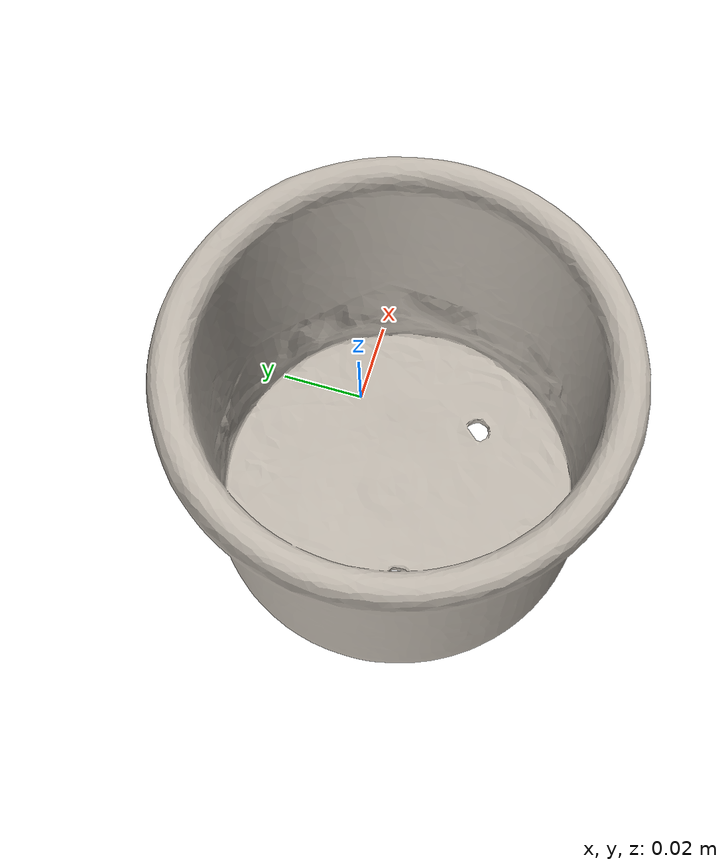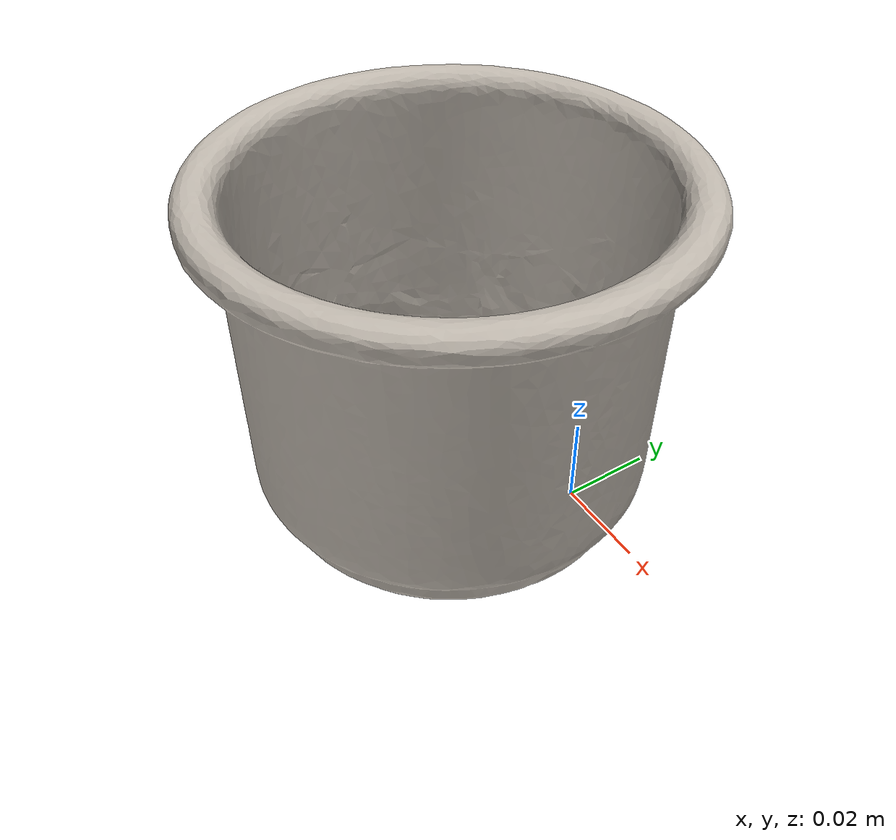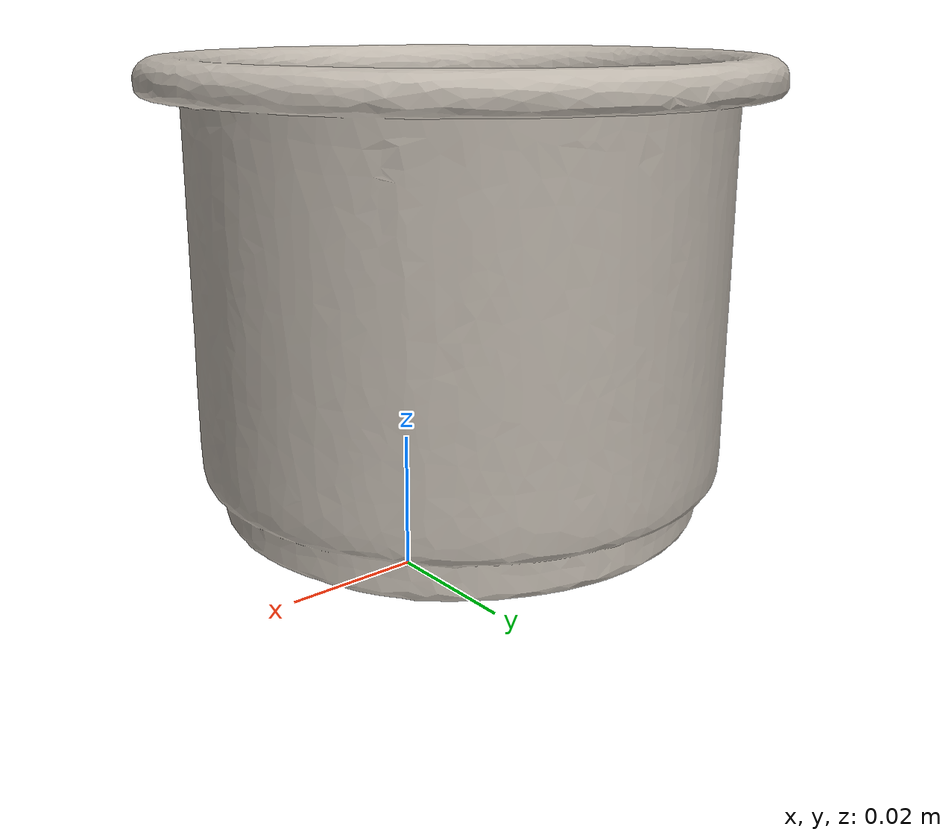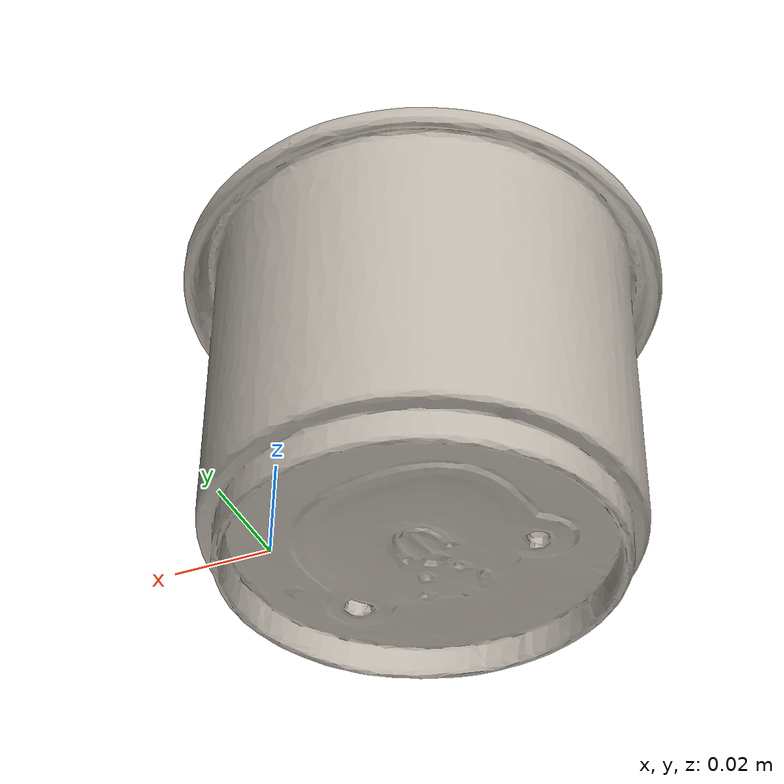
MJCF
<mujoco model="cups_j">
  <compiler angle="radian" meshdir="assets" texturedir="assets"/>
    <default>
        <default class="ycb_col">
            <geom contype="1" conaffinity="1" group="3" rgba=".4 .5 .6 1"/>
        </default>
        <default class="ycb_viz">
            <geom contype="0" conaffinity="0" type="mesh" mass="0"/>
        </default>
    </default>
  <asset>
    <texture type="2d" name="j_cups_tex" file="texture_map.png"/>
    <material name="j_cups_mat" texture="j_cups_tex" specular="0.5" shininess="0.5"/>
    <mesh file="textured.obj" name="j_cups"/>
    <mesh file="textured_collision_0.obj" name="j_cups_collision_0"/>
    <mesh file="textured_collision_1.obj" name="j_cups_collision_1"/>
    <mesh file="textured_collision_2.obj" name="j_cups_collision_2"/>
    <mesh file="textured_collision_3.obj" name="j_cups_collision_3"/>
    <mesh file="textured_collision_4.obj" name="j_cups_collision_4"/>
    <mesh file="textured_collision_5.obj" name="j_cups_collision_5"/>
    <mesh file="textured_collision_6.obj" name="j_cups_collision_6"/>
    <mesh file="textured_collision_7.obj" name="j_cups_collision_7"/>
    <mesh file="textured_collision_8.obj" name="j_cups_collision_8"/>
    <mesh file="textured_collision_9.obj" name="j_cups_collision_9"/>
    <mesh file="textured_collision_10.obj" name="j_cups_collision_10"/>
    <mesh file="textured_collision_11.obj" name="j_cups_collision_11"/>
    <mesh file="textured_collision_12.obj" name="j_cups_collision_12"/>
    <mesh file="textured_collision_13.obj" name="j_cups_collision_13"/>
    <mesh file="textured_collision_14.obj" name="j_cups_collision_14"/>
    <mesh file="textured_collision_15.obj" name="j_cups_collision_15"/>
    <mesh file="textured_collision_16.obj" name="j_cups_collision_16"/>
    <mesh file="textured_collision_17.obj" name="j_cups_collision_17"/>
    <mesh file="textured_collision_18.obj" name="j_cups_collision_18"/>
    <mesh file="textured_collision_19.obj" name="j_cups_collision_19"/>
    <mesh file="textured_collision_20.obj" name="j_cups_collision_20"/>
    <mesh file="textured_collision_21.obj" name="j_cups_collision_21"/>
    <mesh file="textured_collision_22.obj" name="j_cups_collision_22"/>
    <mesh file="textured_collision_23.obj" name="j_cups_collision_23"/>
    <mesh file="textured_collision_24.obj" name="j_cups_collision_24"/>
    <mesh file="textured_collision_25.obj" name="j_cups_collision_25"/>
    <mesh file="textured_collision_26.obj" name="j_cups_collision_26"/>
    <mesh file="textured_collision_27.obj" name="j_cups_collision_27"/>
    <mesh file="textured_collision_28.obj" name="j_cups_collision_28"/>
    <mesh file="textured_collision_29.obj" name="j_cups_collision_29"/>
    <mesh file="textured_collision_30.obj" name="j_cups_collision_30"/>
    <mesh file="textured_collision_31.obj" name="j_cups_collision_31"/>
    <mesh file="textured_collision_32.obj" name="j_cups_collision_32"/>
    <mesh file="textured_collision_33.obj" name="j_cups_collision_33"/>
    <mesh file="textured_collision_34.obj" name="j_cups_collision_34"/>
    <mesh file="textured_collision_35.obj" name="j_cups_collision_35"/>
    <mesh file="textured_collision_36.obj" name="j_cups_collision_36"/>
    <mesh file="textured_collision_37.obj" name="j_cups_collision_37"/>
    <mesh file="textured_collision_38.obj" name="j_cups_collision_38"/>
    <mesh file="textured_collision_39.obj" name="j_cups_collision_39"/>
    <mesh file="textured_collision_40.obj" name="j_cups_collision_40"/>
    <mesh file="textured_collision_41.obj" name="j_cups_collision_41"/>
    <mesh file="textured_collision_42.obj" name="j_cups_collision_42"/>
    <mesh file="textured_collision_43.obj" name="j_cups_collision_43"/>
    <mesh file="textured_collision_44.obj" name="j_cups_collision_44"/>
    <mesh file="textured_collision_45.obj" name="j_cups_collision_45"/>
    <mesh file="textured_collision_46.obj" name="j_cups_collision_46"/>
    <mesh file="textured_collision_47.obj" name="j_cups_collision_47"/>
    <mesh file="textured_collision_48.obj" name="j_cups_collision_48"/>
  </asset>
  <worldbody>
      <geom material="j_cups_mat" mesh="j_cups" class="ycb_viz"/>
      <geom mesh="j_cups_collision_0" class="ycb_col" conaffinity="1" condim="4" friction="0.1 0.1 0.1" mass="0.0008358963487966219" rgba="1 1 1 1" solimp="0.99 0.99 0.01" solref=".001 0.1" type="mesh" group="3"/>
      <geom mesh="j_cups_collision_1" class="ycb_col" conaffinity="1" condim="4" friction="0.1 0.1 0.1" mass="0.0005739444157627498" rgba="1 1 1 1" solimp="0.99 0.99 0.01" solref=".001 0.1" type="mesh" group="3"/>
      <geom mesh="j_cups_collision_2" class="ycb_col" conaffinity="1" condim="4" friction="0.1 0.1 0.1" mass="0.0006346097357640194" rgba="1 1 1 1" solimp="0.99 0.99 0.01" solref=".001 0.1" type="mesh" group="3"/>
      <geom mesh="j_cups_collision_3" class="ycb_col" conaffinity="1" condim="4" friction="0.1 0.1 0.1" mass="0.0008681778564226948" rgba="1 1 1 1" solimp="0.99 0.99 0.01" solref=".001 0.1" type="mesh" group="3"/>
      <geom mesh="j_cups_collision_4" class="ycb_col" conaffinity="1" condim="4" friction="0.1 0.1 0.1" mass="0.0005883920988731273" rgba="1 1 1 1" solimp="0.99 0.99 0.01" solref=".001 0.1" type="mesh" group="3"/>
      <geom mesh="j_cups_collision_5" class="ycb_col" conaffinity="1" condim="4" friction="0.1 0.1 0.1" mass="0.0005950319775727966" rgba="1 1 1 1" solimp="0.99 0.99 0.01" solref=".001 0.1" type="mesh" group="3"/>
      <geom mesh="j_cups_collision_6" class="ycb_col" conaffinity="1" condim="4" friction="0.1 0.1 0.1" mass="0.000609365519070469" rgba="1 1 1 1" solimp="0.99 0.99 0.01" solref=".001 0.1" type="mesh" group="3"/>
      <geom mesh="j_cups_collision_7" class="ycb_col" conaffinity="1" condim="4" friction="0.1 0.1 0.1" mass="0.00038500946581621065" rgba="1 1 1 1" solimp="0.99 0.99 0.01" solref=".001 0.1" type="mesh" group="3"/>
      <geom mesh="j_cups_collision_8" class="ycb_col" conaffinity="1" condim="4" friction="0.1 0.1 0.1" mass="0.0006220589888576609" rgba="1 1 1 1" solimp="0.99 0.99 0.01" solref=".001 0.1" type="mesh" group="3"/>
      <geom mesh="j_cups_collision_9" class="ycb_col" conaffinity="1" condim="4" friction="0.1 0.1 0.1" mass="0.00020295135190738386" rgba="1 1 1 1" solimp="0.99 0.99 0.01" solref=".001 0.1" type="mesh" group="3"/>
      <geom mesh="j_cups_collision_10" class="ycb_col" conaffinity="1" condim="4" friction="0.1 0.1 0.1" mass="0.0005968165207411794" rgba="1 1 1 1" solimp="0.99 0.99 0.01" solref=".001 0.1" type="mesh" group="3"/>
      <geom mesh="j_cups_collision_11" class="ycb_col" conaffinity="1" condim="4" friction="0.1 0.1 0.1" mass="0.00025759338410698794" rgba="1 1 1 1" solimp="0.99 0.99 0.01" solref=".001 0.1" type="mesh" group="3"/>
      <geom mesh="j_cups_collision_12" class="ycb_col" conaffinity="1" condim="4" friction="0.1 0.1 0.1" mass="0.0005843916351429489" rgba="1 1 1 1" solimp="0.99 0.99 0.01" solref=".001 0.1" type="mesh" group="3"/>
      <geom mesh="j_cups_collision_13" class="ycb_col" conaffinity="1" condim="4" friction="0.1 0.1 0.1" mass="0.00039823060957290156" rgba="1 1 1 1" solimp="0.99 0.99 0.01" solref=".001 0.1" type="mesh" group="3"/>
      <geom mesh="j_cups_collision_14" class="ycb_col" conaffinity="1" condim="4" friction="0.1 0.1 0.1" mass="0.0005963146716875249" rgba="1 1 1 1" solimp="0.99 0.99 0.01" solref=".001 0.1" type="mesh" group="3"/>
      <geom mesh="j_cups_collision_15" class="ycb_col" conaffinity="1" condim="4" friction="0.1 0.1 0.1" mass="0.00020686546753501803" rgba="1 1 1 1" solimp="0.99 0.99 0.01" solref=".001 0.1" type="mesh" group="3"/>
      <geom mesh="j_cups_collision_16" class="ycb_col" conaffinity="1" condim="4" friction="0.1 0.1 0.1" mass="0.0001671705603759307" rgba="1 1 1 1" solimp="0.99 0.99 0.01" solref=".001 0.1" type="mesh" group="3"/>
      <geom mesh="j_cups_collision_17" class="ycb_col" conaffinity="1" condim="4" friction="0.1 0.1 0.1" mass="0.0014162544697385513" rgba="1 1 1 1" solimp="0.99 0.99 0.01" solref=".001 0.1" type="mesh" group="3"/>
      <geom mesh="j_cups_collision_18" class="ycb_col" conaffinity="1" condim="4" friction="0.1 0.1 0.1" mass="0.0009978088714780618" rgba="1 1 1 1" solimp="0.99 0.99 0.01" solref=".001 0.1" type="mesh" group="3"/>
      <geom mesh="j_cups_collision_19" class="ycb_col" conaffinity="1" condim="4" friction="0.1 0.1 0.1" mass="0.001390121375133041" rgba="1 1 1 1" solimp="0.99 0.99 0.01" solref=".001 0.1" type="mesh" group="3"/>
      <geom mesh="j_cups_collision_20" class="ycb_col" conaffinity="1" condim="4" friction="0.1 0.1 0.1" mass="0.001019339833322364" rgba="1 1 1 1" solimp="0.99 0.99 0.01" solref=".001 0.1" type="mesh" group="3"/>
      <geom mesh="j_cups_collision_21" class="ycb_col" conaffinity="1" condim="4" friction="0.1 0.1 0.1" mass="0.00023064962626225587" rgba="1 1 1 1" solimp="0.99 0.99 0.01" solref=".001 0.1" type="mesh" group="3"/>
      <geom mesh="j_cups_collision_22" class="ycb_col" conaffinity="1" condim="4" friction="0.1 0.1 0.1" mass="0.0002087679046470759" rgba="1 1 1 1" solimp="0.99 0.99 0.01" solref=".001 0.1" type="mesh" group="3"/>
      <geom mesh="j_cups_collision_23" class="ycb_col" conaffinity="1" condim="4" friction="0.1 0.1 0.1" mass="0.0004383962884073032" rgba="1 1 1 1" solimp="0.99 0.99 0.01" solref=".001 0.1" type="mesh" group="3"/>
      <geom mesh="j_cups_collision_24" class="ycb_col" conaffinity="1" condim="4" friction="0.1 0.1 0.1" mass="0.0013011765859966679" rgba="1 1 1 1" solimp="0.99 0.99 0.01" solref=".001 0.1" type="mesh" group="3"/>
      <geom mesh="j_cups_collision_25" class="ycb_col" conaffinity="1" condim="4" friction="0.1 0.1 0.1" mass="0.0012335188039269119" rgba="1 1 1 1" solimp="0.99 0.99 0.01" solref=".001 0.1" type="mesh" group="3"/>
      <geom mesh="j_cups_collision_26" class="ycb_col" conaffinity="1" condim="4" friction="0.1 0.1 0.1" mass="0.0015152698170888975" rgba="1 1 1 1" solimp="0.99 0.99 0.01" solref=".001 0.1" type="mesh" group="3"/>
      <geom mesh="j_cups_collision_27" class="ycb_col" conaffinity="1" condim="4" friction="0.1 0.1 0.1" mass="0.001248347183381451" rgba="1 1 1 1" solimp="0.99 0.99 0.01" solref=".001 0.1" type="mesh" group="3"/>
      <geom mesh="j_cups_collision_28" class="ycb_col" conaffinity="1" condim="4" friction="0.1 0.1 0.1" mass="0.0002918072697073275" rgba="1 1 1 1" solimp="0.99 0.99 0.01" solref=".001 0.1" type="mesh" group="3"/>
      <geom mesh="j_cups_collision_29" class="ycb_col" conaffinity="1" condim="4" friction="0.1 0.1 0.1" mass="0.00021525621882446556" rgba="1 1 1 1" solimp="0.99 0.99 0.01" solref=".001 0.1" type="mesh" group="3"/>
      <geom mesh="j_cups_collision_30" class="ycb_col" conaffinity="1" condim="4" friction="0.1 0.1 0.1" mass="0.0005228867761847384" rgba="1 1 1 1" solimp="0.99 0.99 0.01" solref=".001 0.1" type="mesh" group="3"/>
      <geom mesh="j_cups_collision_31" class="ycb_col" conaffinity="1" condim="4" friction="0.1 0.1 0.1" mass="0.0016019072158566035" rgba="1 1 1 1" solimp="0.99 0.99 0.01" solref=".001 0.1" type="mesh" group="3"/>
      <geom mesh="j_cups_collision_32" class="ycb_col" conaffinity="1" condim="4" friction="0.1 0.1 0.1" mass="0.001315216350339489" rgba="1 1 1 1" solimp="0.99 0.99 0.01" solref=".001 0.1" type="mesh" group="3"/>
      <geom mesh="j_cups_collision_33" class="ycb_col" conaffinity="1" condim="4" friction="0.1 0.1 0.1" mass="0.0014809567840755446" rgba="1 1 1 1" solimp="0.99 0.99 0.01" solref=".001 0.1" type="mesh" group="3"/>
      <geom mesh="j_cups_collision_34" class="ycb_col" conaffinity="1" condim="4" friction="0.1 0.1 0.1" mass="0.001835418829639284" rgba="1 1 1 1" solimp="0.99 0.99 0.01" solref=".001 0.1" type="mesh" group="3"/>
      <geom mesh="j_cups_collision_35" class="ycb_col" conaffinity="1" condim="4" friction="0.1 0.1 0.1" mass="0.00021107102513385044" rgba="1 1 1 1" solimp="0.99 0.99 0.01" solref=".001 0.1" type="mesh" group="3"/>
      <geom mesh="j_cups_collision_36" class="ycb_col" conaffinity="1" condim="4" friction="0.1 0.1 0.1" mass="0.00027898961328713434" rgba="1 1 1 1" solimp="0.99 0.99 0.01" solref=".001 0.1" type="mesh" group="3"/>
      <geom mesh="j_cups_collision_37" class="ycb_col" conaffinity="1" condim="4" friction="0.1 0.1 0.1" mass="0.0012556787256269727" rgba="1 1 1 1" solimp="0.99 0.99 0.01" solref=".001 0.1" type="mesh" group="3"/>
      <geom mesh="j_cups_collision_38" class="ycb_col" conaffinity="1" condim="4" friction="0.1 0.1 0.1" mass="0.0015442339112699689" rgba="1 1 1 1" solimp="0.99 0.99 0.01" solref=".001 0.1" type="mesh" group="3"/>
      <geom mesh="j_cups_collision_39" class="ycb_col" conaffinity="1" condim="4" friction="0.1 0.1 0.1" mass="0.0020534929574369037" rgba="1 1 1 1" solimp="0.99 0.99 0.01" solref=".001 0.1" type="mesh" group="3"/>
      <geom mesh="j_cups_collision_40" class="ycb_col" conaffinity="1" condim="4" friction="0.1 0.1 0.1" mass="0.0006447170685813055" rgba="1 1 1 1" solimp="0.99 0.99 0.01" solref=".001 0.1" type="mesh" group="3"/>
      <geom mesh="j_cups_collision_41" class="ycb_col" conaffinity="1" condim="4" friction="0.1 0.1 0.1" mass="6.095779902288789e-05" rgba="1 1 1 1" solimp="0.99 0.99 0.01" solref=".001 0.1" type="mesh" group="3"/>
      <geom mesh="j_cups_collision_42" class="ycb_col" conaffinity="1" condim="4" friction="0.1 0.1 0.1" mass="0.00033726221205146657" rgba="1 1 1 1" solimp="0.99 0.99 0.01" solref=".001 0.1" type="mesh" group="3"/>
      <geom mesh="j_cups_collision_43" class="ycb_col" conaffinity="1" condim="4" friction="0.1 0.1 0.1" mass="0.001397706430115646" rgba="1 1 1 1" solimp="0.99 0.99 0.01" solref=".001 0.1" type="mesh" group="3"/>
      <geom mesh="j_cups_collision_44" class="ycb_col" conaffinity="1" condim="4" friction="0.1 0.1 0.1" mass="0.0004450926942110235" rgba="1 1 1 1" solimp="0.99 0.99 0.01" solref=".001 0.1" type="mesh" group="3"/>
      <geom mesh="j_cups_collision_45" class="ycb_col" conaffinity="1" condim="4" friction="0.1 0.1 0.1" mass="0.0005142246470613872" rgba="1 1 1 1" solimp="0.99 0.99 0.01" solref=".001 0.1" type="mesh" group="3"/>
      <geom mesh="j_cups_collision_46" class="ycb_col" conaffinity="1" condim="4" friction="0.1 0.1 0.1" mass="0.0008035444572142358" rgba="1 1 1 1" solimp="0.99 0.99 0.01" solref=".001 0.1" type="mesh" group="3"/>
      <geom mesh="j_cups_collision_47" class="ycb_col" conaffinity="1" condim="4" friction="0.1 0.1 0.1" mass="0.0008470894982327748" rgba="1 1 1 1" solimp="0.99 0.99 0.01" solref=".001 0.1" type="mesh" group="3"/>
      <geom mesh="j_cups_collision_48" class="ycb_col" conaffinity="1" condim="4" friction="0.1 0.1 0.1" mass="0.000620018148738183" rgba="1 1 1 1" solimp="0.99 0.99 0.01" solref=".001 0.1" type="mesh" group="3"/>
  </worldbody>
</mujoco>
